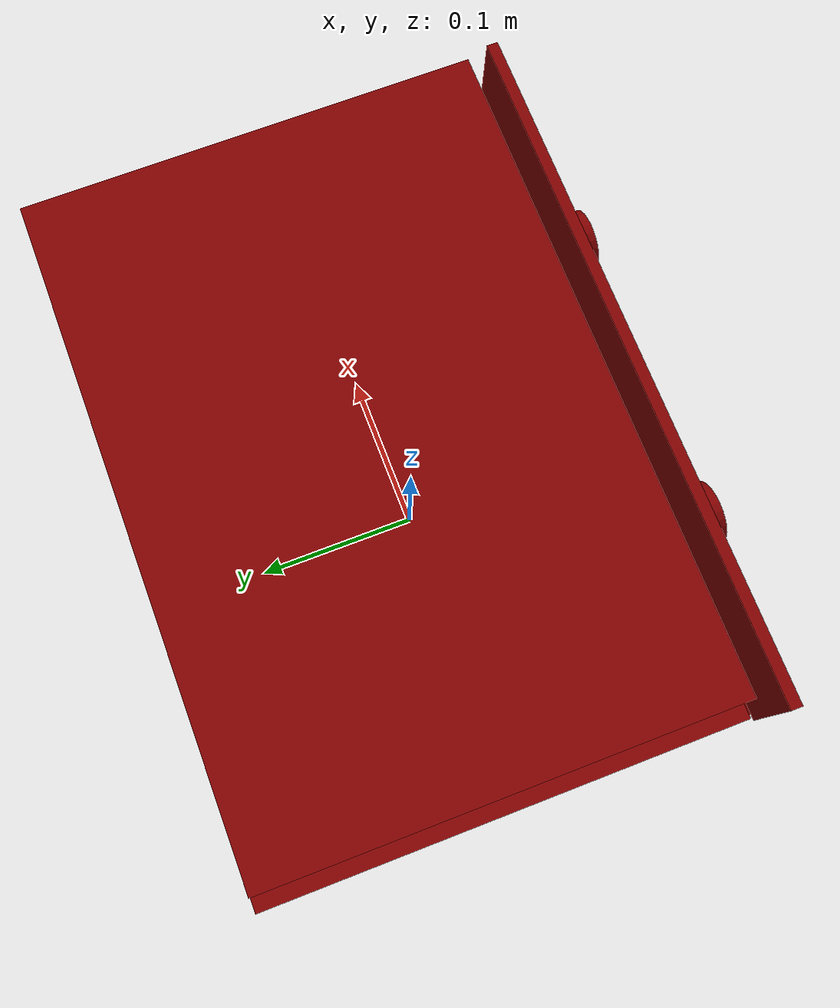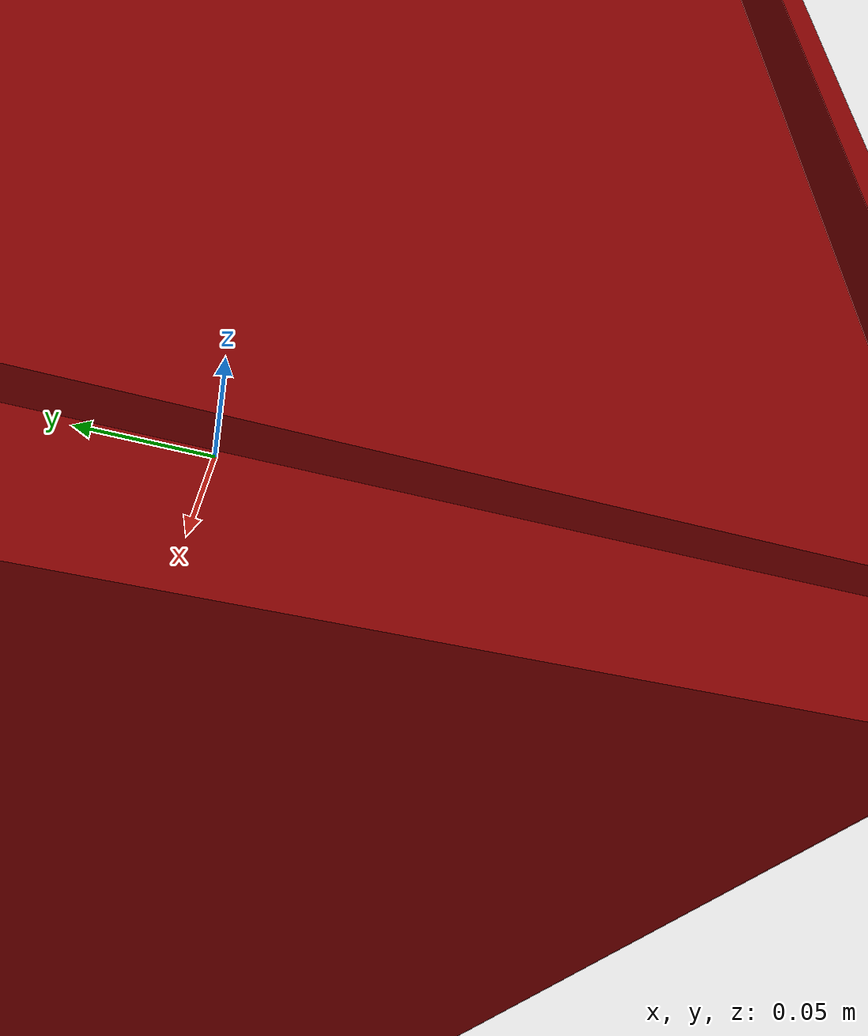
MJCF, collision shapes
<mujoco model="model">
  <compiler angle="radian"/>
  <asset>
    <mesh file="visuals/Body001.obj" name="Body001_vis"/>
    <mesh file="visuals/Door001.obj" name="Door001_vis"/>
    <mesh file="visuals/Door001_Clear.obj" name="Door001_Clear_vis"/>
    <mesh file="visuals/Knob001.obj" name="Knob001_vis"/>
    <mesh file="visuals/Knob002.obj" name="Knob002_vis"/>
    <mesh file="visuals/Shelf001.obj" name="Shelf001_vis"/>
    <texture file="visuals/T_BC001.png" name="Body001_material" type="2d"/>
    <material name="Body001_material" rgba="1 1 1 1.0" texture="Body001_material" shininess="0.4472135901451111" specular="0.3103448502657381"/>
    <texture file="visuals/T_BC001.png" name="Door001_material" type="2d"/>
    <material name="Door001_material" rgba="1 1 1 1.0" texture="Door001_material" shininess="0.4472135901451111" specular="0.3103448502657381"/>
    <texture file="visuals/T_BC001.png" name="Door001_Clear_material" type="2d"/>
    <material name="Door001_Clear_material" rgba="1 1 1 0.8741580843925476" texture="Door001_Clear_material" shininess="0.4472135901451111" specular="0.3103448502657381"/>
    <texture file="visuals/T_BC001.png" name="Knob001_material" type="2d"/>
    <material name="Knob001_material" rgba="1 1 1 1.0" texture="Knob001_material" shininess="0.4472135901451111" specular="0.3103448502657381"/>
    <texture file="visuals/T_BC001.png" name="Knob002_material" type="2d"/>
    <material name="Knob002_material" rgba="1 1 1 1.0" texture="Knob002_material" shininess="0.4472135901451111" specular="0.3103448502657381"/>
    <texture file="visuals/T_BC001.png" name="Shelf001_material" type="2d"/>
    <material name="Shelf001_material" rgba="1 1 1 1.0" texture="Shelf001_material" shininess="0.4472135901451111" specular="0.3103448502657381"/>
  </asset>
  <default>
    <default class="visual">
      <geom conaffinity="0" contype="0" group="1" type="mesh"/>
    </default>
    <default class="collision">
      <geom group="0" rgba="0.5 0 0 0.5"/>
    </default>
    <default class="spawn">
      <geom group="0" rgba="1 1 1 0.5" contype="0" conaffinity="0"/>
      <site group="0" rgba="1 1 1 0.5"/>
    </default>
    <default class="region">
      <geom group="1" conaffinity="0" contype="0" rgba="0 1 0 0"/>
    </default>
  </default>
  <worldbody>
    <body>
      <body name="object">
        <geom mesh="Body001_vis" type="mesh" solimp="0.998 0.998 0.001" solref="0.001 1" density="100" friction="0.95 0.3 0.1" class="visual" material="Body001_material"/>
        <geom class="collision" type="box" pos="0.170458 0.024660 0.010914" size="0.01648625172674656 0.12441763281822205 0.1630309820175171" quat="1.0 0.0 0.0 0.0"/>
        <geom class="collision" type="box" pos="0.004774 0.021900 -0.161735" size="0.18597455322742462 0.12752316892147064 0.01578417979180813" quat="1.0 0.0 0.0 0.0"/>
        <geom class="collision" type="box" pos="-0.001286 0.139111 0.004591" size="0.17093364894390106 0.004942120984196663 0.15130853652954102" quat="1.0 0.0 0.0 0.0"/>
        <geom class="collision" type="box" pos="0.000000 -0.119937 0.151409" size="0.19212903082370758 0.0031471436377614737 0.029829055070877075" quat="1.0 0.0 0.0 0.0"/>
        <geom class="collision" type="box" pos="-0.172321 0.024660 0.010914" size="0.01659276708960533 0.12441733479499817 0.16303059458732605" quat="1.0 0.0 0.0 0.0"/>
        <geom class="collision" type="box" pos="0.004774 0.021900 0.134082" size="0.1859743744134903 0.1275225579738617 0.04256159067153931" quat="1.0 0.0 0.0 0.0"/>
        <body name="Door001">
          <joint axis="1.0 0.0 0.0" pos="-0.001230 -0.119834 -0.172592" limited="true" name="Door001_joint" range="0.0 1.15" type="hinge" damping="5" frictionloss="1" armature=".01" stiffness="0.05" springref="-0.4"/>
          <geom mesh="Door001_vis" type="mesh" solimp="0.998 0.998 0.001" solref="0.001 1" density="100" friction="0.95 0.3 0.1" class="visual" material="Door001_material"/>
          <geom class="collision" type="box" pos="-0.000925 -0.119626 -0.027521" size="0.18813085556030273 0.0041390410624444485 0.14075730741024017" quat="1.0 0.0 0.0 0.0"/>
          <geom class="collision" type="box" pos="-0.152661 -0.132284 0.097289" size="0.011516321450471878 0.008796263486146927 0.009480617940425873" quat="1.0 0.0 0.0 0.0"/>
          <geom class="collision" type="box" pos="-0.002786 -0.144210 0.097946" size="0.15497693419456482 0.002627516398206353 0.00769991846755147" quat="1.0 0.0 0.0 0.0"/>
          <geom class="collision" type="box" pos="0.146779 -0.132284 0.097289" size="0.011516321450471878 0.008796263486146927 0.009480617940425873" quat="1.0 0.0 0.0 0.0"/>
          <body name="Door001_Clear">
            <geom mesh="Door001_Clear_vis" type="mesh" solimp="0.998 0.998 0.001" solref="0.001 1" density="100" friction="0.95 0.3 0.1" class="visual" material="Door001_Clear_material"/>
            <geom class="collision" type="box" pos="-0.000651 -0.120888 -0.022879" size="0.15922340750694275 0.0016341737937182188 0.10935982316732407" quat="1.0 0.0 0.0 0.0"/>
          </body>
        </body>
        <body name="Knob001">
          <joint axis="0.0 1.0 0.0" pos="-0.085787 -0.128221 0.149233" limited="true" name="Knob001_joint" range="0.0 3.6651914291880923" type="hinge" damping="0.05" armature="0.001"/>
          <geom mesh="Knob001_vis" type="mesh" solimp="0.998 0.998 0.001" solref="0.001 1" density="100" friction="0.95 0.3 0.1" class="visual" material="Knob001_material"/>
          <geom class="collision" type="cylinder" pos="-0.085631 -0.128537 0.149177" size="0.0164551492780447 0.004870063625276089" quat="0.7071067690849304 0.7071067690849304 -1.5700926965105832e-16 3.431546515433212e-24"/>
        </body>
        <body name="Knob002">
          <joint axis="0.0 1.0 0.0" pos="0.079978 -0.128221 0.149233" limited="true" name="Knob002_joint" range="0.0 3.141592653589793" type="hinge" damping="0.05" armature="0.001"/>
          <geom mesh="Knob002_vis" type="mesh" solimp="0.998 0.998 0.001" solref="0.001 1" density="100" friction="0.95 0.3 0.1" class="visual" material="Knob002_material"/>
          <geom class="collision" type="cylinder" pos="0.079813 -0.128537 0.149177" size="0.0164551492780447 0.004870063625276089" quat="0.7071067690849304 0.7071067690849304 -1.5700926965105832e-16 3.431546515433212e-24"/>
        </body>
        <body name="Shelf001">
          <joint axis="0.0 -1.0 0.0" pos="-0.001043 0.008231 -0.006837" limited="true" name="Shelf001_joint" range="0.0 0.2" type="slide" damping="1" frictionloss="1" armature=".01" stiffness="0.05"/>
          <geom mesh="Shelf001_vis" type="mesh" solimp="0.998 0.998 0.001" solref="0.001 1" density="100" friction="0.95 0.3 0.1" class="visual" material="Shelf001_material"/>
          <geom class="collision" type="box" pos="-0.001230 0.009939 -0.005772" size="0.1499941647052765 0.1071794256567955 0.0012827718164771795" quat="1.0 0.0 0.0 0.0"/>
        </body>
        <geom class="region" name="reg_main" type="box" pos="-0.001229999999999995 0.009938500000000003 -2.2000000000008124e-05" size="0.189645 0.1331005 0.181216"/>
        <geom class="region" name="reg_int" type="box" pos="-0.002490000000000006 0.012485500000000004 -0.027067" size="0.153818 0.1217085 0.115896"/>
      </body>
    </body>
  </worldbody>
  <actuator>
    <motor name="Door001_joint_actuator" joint="Door001_joint" gear="50"/>
    <motor name="Knob001_joint_actuator" joint="Knob001_joint" gear="50"/>
    <motor name="Knob002_joint_actuator" joint="Knob002_joint" gear="50"/>
    <motor name="Shelf001_joint_actuator" joint="Shelf001_joint" gear="50"/>
  </actuator>
</mujoco>
